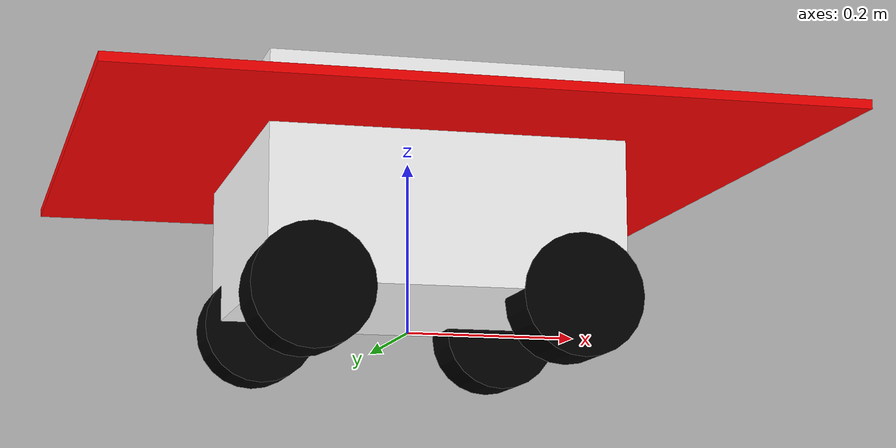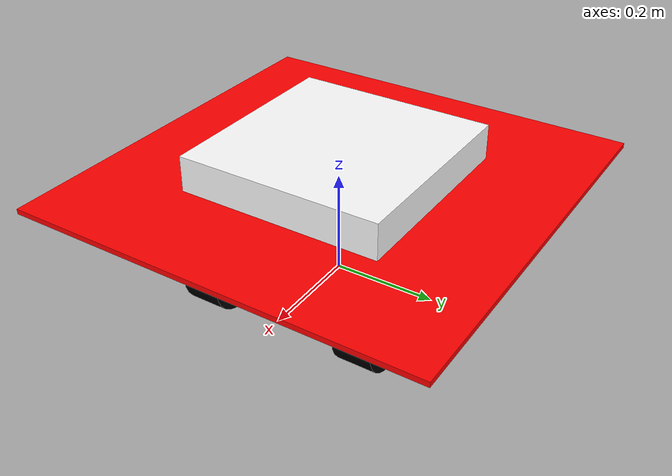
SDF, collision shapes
<sdf version='1.6'>
  <model name='r1_rover'>
  <link name='base_link'>
      <pose>0 0 0 0 -0 0</pose>
      <inertial>
        <pose>0 0 0 0 -0 0</pose>
        <mass>20.0</mass>
        <inertia>
          <ixx>0.37083</ixx>
          <ixy>0.0</ixy>
          <ixz>0.0</ixz>
          <iyy>0.37083</iyy>
          <iyz>0.0</iyz>
          <izz>0.53333</izz>
        </inertia>
      </inertial>
      <collision name='odom_fixed_joint_lump__base_link_collision'>
        <pose>0 0 0.15 0 -0 0</pose>
        <geometry>
          <box>
            <size>0.4 0.4 0.25</size>
          </box>
        </geometry>
        <surface>
          <contact>
            <ode/>
          </contact>
          <friction>
            <ode/>
          </friction>
        </surface>
      </collision>
      <visual name='odom_fixed_joint_lump__base_link_visual'>
        <pose>0 0 0 0 -0 0</pose>
        <geometry>
          <mesh>
            <scale>1 1 1</scale>
            <uri>model://r1_rover/meshes/chassis_link.STL</uri>
          </mesh>
        </geometry>
        <material>
          <diffuse>1.0 1.0 1.0</diffuse>
          <specular>1.0 1.0 1.0</specular>
        </material>
      </visual>
      <visual name='odom_fixed_joint_lump__top_link_visual_1'>
        <pose>0 0 0.114486 0 -0 0</pose>
        <geometry>
          <mesh>
            <scale>1 1 1</scale>
            <uri>model://r1_rover/meshes/top_link.STL</uri>
          </mesh>
        </geometry>
        <material>
          <diffuse>1.0 1.0 1.0</diffuse>
          <specular>1.0 1.0 1.0</specular>
        </material>
      </visual>
      <visual name='odom_fixed_joint_lump__battery_link_visual_2'>
        <pose>-0.09302 -0.000128 0.114486 0 -0 0</pose>
        <geometry>
          <mesh>
            <scale>1 1 1</scale>
            <uri>model://r1_rover/meshes/battery_link.STL</uri>
          </mesh>
        </geometry>
        <material>
          <diffuse>0.0 0.0 0.0</diffuse>
          <specular>0.5 0.5 0.5</specular>
        </material>
      </visual>
      <visual name='odom_fixed_joint_lump__housing_link_visual_3'>
        <pose>0.03473 0 0.114486 0 -0 0</pose>
        <geometry>
          <mesh>
            <scale>1 1 1</scale>
            <uri>model://r1_rover/meshes/housing_link.STL</uri>
          </mesh>
        </geometry>
        <material>
          <diffuse>0.0 0.0 0.0</diffuse>
          <specular>0.5 0.5 0.5</specular>
        </material>
      </visual>
      <visual name='odom_fixed_joint_lump__l_antenna_link_visual_4'>
        <pose>-0.1565 0.0762 0.114486 0 -0 0</pose>
        <geometry>
          <mesh>
            <scale>1 1 1</scale>
            <uri>model://r1_rover/meshes/antenna_link.STL</uri>
          </mesh>
        </geometry>
        <material>
          <diffuse>0.0 0.0 0.0</diffuse>
          <specular>0.5 0.5 0.5</specular>
        </material>
      </visual>
      <visual name='odom_fixed_joint_lump__r_antenna_link_visual_5'>
        <pose>-0.1565 -0.0762 0.114486 0 -0 0</pose>
        <geometry>
          <mesh>
            <scale>1 1 1</scale>
            <uri>model://r1_rover/meshes/antenna_link.STL</uri>
          </mesh>
        </geometry>
        <material>
          <diffuse>0.0 0.0 0.0</diffuse>
          <specular>0.5 0.5 0.5</specular>
        </material>
      </visual>
      <velocity_decay/>
      <velocity_decay/>
      <velocity_decay/>
      <velocity_decay/>
      <velocity_decay/>
      <gravity>1</gravity>
      <velocity_decay/>
      <sensor name="imu_sensor" type="imu">
          <always_on>1</always_on>
          <update_rate>250</update_rate>
          <imu>
            <angular_velocity>
              <x> <noise type="gaussian"> <mean>0</mean> <stddev>0.0003394</stddev> <dynamic_bias_stddev>3.8785e-05</dynamic_bias_stddev> <dynamic_bias_correlation_time>1000</dynamic_bias_correlation_time> </noise> </x>
              <y> <noise type="gaussian"> <mean>0</mean> <stddev>0.0003394</stddev> <dynamic_bias_stddev>3.8785e-05</dynamic_bias_stddev> <dynamic_bias_correlation_time>1000</dynamic_bias_correlation_time> </noise> </y>
              <z> <noise type="gaussian"> <mean>0</mean> <stddev>0.0003394</stddev> <dynamic_bias_stddev>3.8785e-05</dynamic_bias_stddev> <dynamic_bias_correlation_time>1000</dynamic_bias_correlation_time> </noise> </z>
            </angular_velocity>
            <linear_acceleration>
              <x> <noise type="gaussian"> <mean>0</mean> <stddev>0.004</stddev> <dynamic_bias_stddev>0.006</dynamic_bias_stddev> <dynamic_bias_correlation_time>300</dynamic_bias_correlation_time> </noise> </x>
              <y> <noise type="gaussian"> <mean>0</mean> <stddev>0.004</stddev> <dynamic_bias_stddev>0.006</dynamic_bias_stddev> <dynamic_bias_correlation_time>300</dynamic_bias_correlation_time> </noise> </y>
              <z> <noise type="gaussian"> <mean>0</mean> <stddev>0.004</stddev> <dynamic_bias_stddev>0.006</dynamic_bias_stddev> <dynamic_bias_correlation_time>300</dynamic_bias_correlation_time> </noise> </z>
            </linear_acceleration>
          </imu>
        </sensor>
        <sensor name="air_pressure_sensor" type="air_pressure">
          <always_on>1</always_on>
          <update_rate>50</update_rate>
          <air_pressure>
            <pressure>
              <noise type="gaussian"> <mean>0</mean> <stddev>0.01</stddev> </noise>
            </pressure>
          </air_pressure>
        </sensor>
        <sensor name="magnetometer_sensor" type="magnetometer">
          <always_on>1</always_on>
          <update_rate>100</update_rate>
          <magnetometer>
            <x> <noise type="gaussian"> <stddev>0.0001</stddev> </noise> </x>
            <y> <noise type="gaussian"> <stddev>0.0001</stddev> </noise> </y>
            <z> <noise type="gaussian"> <stddev>0.0001</stddev> </noise> </z>
          </magnetometer>
        </sensor>
        <sensor name="navsat_sensor" type="navsat">
          <always_on>1</always_on>
          <update_rate>30</update_rate>
        </sensor>
    </link>

    <link name='lf_wheel_link'>
      <pose>0.15 0.16317 0.0215 0 -0 0</pose>
      <inertial>
        <pose>0 0 0 1.57079632679 0 0</pose>
        <mass>0.414</mass>
        <inertia>
          <ixx>0.00068682</ixx> <ixy>0</ixy> <ixz>0</ixz>
          <iyy>0.00068682</iyy> <iyz>0</iyz>
          <izz>0.00097299</izz>
        </inertia>
      </inertial>
      <collision name='lf_wheel_link_collision'>
        <pose>0 0 0 1.57079632679 0 0</pose>
        <geometry>
          <cylinder> <radius>0.0686</radius> <length>0.0762</length> </cylinder>
        </geometry>
        <max_contacts>1</max_contacts>
        <surface>
          <friction> <torsional> <coefficient>0.25</coefficient> <use_patch_radius>1</use_patch_radius> <surface_radius>0.0686</surface_radius> </torsional> <ode> <mu>1.0</mu> <mu2>1.0</mu2> <fdir1>1 0 0</fdir1> <slip1>0.0</slip1> <slip2>0.0</slip2> </ode> </friction>
          <bounce> <restitution_coefficient>0</restitution_coefficient> <threshold>1e6</threshold> </bounce>
          <contact> <ode> <min_depth>0.001</min_depth> <max_vel>0.0</max_vel> <kp>1.0e6</kp> <kd>100.0</kd> </ode> </contact>
        </surface>
      </collision>
      <visual name='lf_wheel_link_visual'>
        <pose>0 0 0 0 -0 0</pose>
        <geometry>
          <mesh> <scale>1 1 1</scale> <uri>model://r1_rover/meshes/wheel_link.STL</uri> </mesh>
        </geometry>
        <material> <diffuse>0.0 0.0 0.0</diffuse> <specular>0.5 0.5 0.5</specular> </material>
      </visual>
      <gravity>1</gravity>
      <velocity_decay/>
    </link>

    <link name='lb_wheel_link'>
      <pose>-0.15 0.16317 0.0215 0 -0 0</pose>
      <inertial>
        <pose>0 0 0 1.57079632679 0 0</pose>
        <mass>0.414</mass>
        <inertia>
          <ixx>0.00068682</ixx> <ixy>0</ixy> <ixz>0</ixz>
          <iyy>0.00068682</iyy> <iyz>0</iyz>
          <izz>0.00097299</izz>
        </inertia>
      </inertial>
      <collision name='lb_wheel_link_collision'>
        <pose>0 0 0 1.57079632679 0 0</pose>
        <geometry>
          <cylinder> <radius>0.0686</radius> <length>0.0762</length> </cylinder>
        </geometry>
        <max_contacts>1</max_contacts>
        <surface>
          <friction> <torsional> <coefficient>0.25</coefficient> <use_patch_radius>1</use_patch_radius> <surface_radius>0.0686</surface_radius> </torsional> <ode> <mu>1.0</mu> <mu2>1.0</mu2> <fdir1>1 0 0</fdir1> <slip1>0.0</slip1> <slip2>0.0</slip2> </ode> </friction>
          <bounce> <restitution_coefficient>0</restitution_coefficient> <threshold>1e6</threshold> </bounce>
          <contact> <ode> <min_depth>0.001</min_depth> <max_vel>0.0</max_vel> <kp>1.0e6</kp> <kd>100.0</kd> </ode> </contact>
        </surface>
      </collision>
      <visual name='lb_wheel_link_visual'>
        <pose>0 0 0 0 -0 0</pose>
        <geometry>
          <mesh> <scale>1 1 1</scale> <uri>model://r1_rover/meshes/wheel_link.STL</uri> </mesh>
        </geometry>
        <material> <diffuse>0.0 0.0 0.0</diffuse> <specular>0.5 0.5 0.5</specular> </material>
      </visual>
      <gravity>1</gravity>
      <velocity_decay/>
    </link>

    <link name='rf_wheel_link'>
      <pose>0.15 -0.16317 0.0215 0 -0 0</pose>
      <inertial>
        <pose>0 0 0 1.57079632679 0 0</pose>
        <mass>0.414</mass>
        <inertia>
          <ixx>0.00068682</ixx> <ixy>0</ixy> <ixz>0</ixz>
          <iyy>0.00068682</iyy> <iyz>0</iyz>
          <izz>0.00097299</izz>
        </inertia>
      </inertial>
      <collision name='rf_wheel_link_collision'>
        <pose>0 0 0 1.57079632679 0 0</pose>
        <geometry>
          <cylinder> <radius>0.0686</radius> <length>0.0762</length> </cylinder>
        </geometry>
        <max_contacts>1</max_contacts>
        <surface>
          <friction> <torsional> <coefficient>0.25</coefficient> <use_patch_radius>1</use_patch_radius> <surface_radius>0.0686</surface_radius> </torsional> <ode> <mu>1.0</mu> <mu2>1.0</mu2> <fdir1>1 0 0</fdir1> <slip1>0.0</slip1> <slip2>0.0</slip2> </ode> </friction>
          <bounce> <restitution_coefficient>0</restitution_coefficient> <threshold>1e6</threshold> </bounce>
          <contact> <ode> <min_depth>0.001</min_depth> <max_vel>0.0</max_vel> <kp>1.0e6</kp> <kd>100.0</kd> </ode> </contact>
        </surface>
      </collision>
      <visual name='rf_wheel_link_visual'>
        <pose>0 0 0 0 -0 0</pose>
        <geometry>
          <mesh> <scale>1 1 1</scale> <uri>model://r1_rover/meshes/wheel_link.STL</uri> </mesh>
        </geometry>
        <material> <diffuse>0.0 0.0 0.0</diffuse> <specular>0.5 0.5 0.5</specular> </material>
      </visual>
      <gravity>1</gravity>
      <velocity_decay/>
    </link>

    <link name='rb_wheel_link'>
      <pose>-0.15 -0.16317 0.0215 0 -0 0</pose>
      <inertial>
        <pose>0 0 0 1.57079632679 0 0</pose>
        <mass>0.414</mass>
        <inertia>
          <ixx>0.00068682</ixx> <ixy>0</ixy> <ixz>0</ixz>
          <iyy>0.00068682</iyy> <iyz>0</iyz>
          <izz>0.00097299</izz>
        </inertia>
      </inertial>
      <collision name='rb_wheel_link_collision'>
        <pose>0 0 0 1.57079632679 0 0</pose>
        <geometry>
          <cylinder> <radius>0.0686</radius> <length>0.0762</length> </cylinder>
        </geometry>
        <max_contacts>1</max_contacts>
        <surface>
          <friction> <torsional> <coefficient>0.25</coefficient> <use_patch_radius>1</use_patch_radius> <surface_radius>0.0686</surface_radius> </torsional> <ode> <mu>1.0</mu> <mu2>1.0</mu2> <fdir1>1 0 0</fdir1> <slip1>0.0</slip1> <slip2>0.0</slip2> </ode> </friction>
          <bounce> <restitution_coefficient>0</restitution_coefficient> <threshold>1e6</threshold> </bounce>
          <contact> <ode> <min_depth>0.001</min_depth> <kp>1e8</kp> </ode> </contact>
        </surface>
      </collision>
      <visual name='rb_wheel_link_visual'>
        <pose>0 0 0 0 -0 0</pose>
        <geometry>
          <mesh> <scale>1 1 1</scale> <uri>model://r1_rover/meshes/wheel_link.STL</uri> </mesh>
        </geometry>
        <material> <diffuse>0.0 0.0 0.0</diffuse> <specular>0.5 0.5 0.5</specular> </material>
      </visual>
      <gravity>1</gravity>
      <velocity_decay/>
    </link>

    <link name="plataforma_aterrizaje">
      <pose>0 0 0.2 0 0 0</pose>
      <inertial> <mass>0.5</mass>
        <inertia>
          <ixx>0.0535</ixx> <ixy>0</ixy> <ixz>0</ixz>
          <iyy>0.0535</iyy> <iyz>0</iyz>
          <izz>0.1067</izz>
        </inertia>
      </inertial>
      <collision name="collision_plataforma">
         <geometry>
           <box><size>0.8 0.8 0.01</size></box>
         </geometry>
         <surface> <contact><ode/></contact> <friction><ode/></friction> <bounce/> </surface>
      </collision>
      <visual name="visual_base_roja">
         <pose>0 0 0 0 0 0</pose> <geometry>
            <box><size>0.8 0.8 0.01</size></box> </geometry>
         <material>
            <ambient>1 0 0 1</ambient>
            <diffuse>1 0 0 1</diffuse>
            <specular>0.1 0.1 0.1 1</specular>
         </material>
      </visual>
      <visual name="visual_superficie_gris">
         <pose>0 0 0.005 0 0 0</pose>
         <geometry>
            <box><size>0.7 0.7 0.01</size></box> </geometry>
         <material>
            <ambient>0.5 0.5 0.5 1</ambient>
            <diffuse>0.5 0.5 0.5 1</diffuse>
            <specular>0.1 0.1 0.1 1</specular>
         </material>
      </visual>
    </link>
    <joint name='motor_0' type='revolute'>
      <child>lf_wheel_link</child>
      <parent>base_link</parent>
      <axis>
        <xyz>0 1 0</xyz>
        <limit> <lower>-1e+16</lower> <upper>1e+16</upper> </limit>
        <dynamics> <spring_reference>0</spring_reference> <spring_stiffness>0</spring_stiffness> </dynamics>
        <use_parent_model_frame>1</use_parent_model_frame>
      </axis>
    </joint>
    <joint name='motor_1' type='revolute'>
      <child>lb_wheel_link</child>
      <parent>base_link</parent>
      <axis>
        <xyz>0 1 0</xyz>
        <limit> <lower>-1e+16</lower> <upper>1e+16</upper> </limit>
        <dynamics> <spring_reference>0</spring_reference> <spring_stiffness>0</spring_stiffness> </dynamics>
        <use_parent_model_frame>1</use_parent_model_frame>
      </axis>
    </joint>
    <joint name='motor_2' type='revolute'>
      <child>rf_wheel_link</child>
      <parent>base_link</parent>
      <axis>
        <xyz>0 -1 0</xyz> <limit> <lower>-1e+16</lower> <upper>1e+16</upper> </limit>
        <dynamics> <spring_reference>0</spring_reference> <spring_stiffness>0</spring_stiffness> </dynamics>
        <use_parent_model_frame>1</use_parent_model_frame>
      </axis>
    </joint>
    <joint name='motor_3' type='revolute'>
      <child>rb_wheel_link</child>
      <parent>base_link</parent>
      <axis>
        <xyz>0 -1 0</xyz> <limit> <lower>-1e+16</lower> <upper>1e+16</upper> </limit>
        <dynamics> <spring_reference>0</spring_reference> <spring_stiffness>0</spring_stiffness> </dynamics>
        <use_parent_model_frame>1</use_parent_model_frame>
      </axis>
    </joint>

    <joint name="joint_plataforma_chasis" type="fixed">
      <parent>base_link</parent> <child>plataforma_aterrizaje</child> <pose>0 0 0 0 0 0</pose> </joint>
    <static>0</static> <plugin filename="gz-sim-joint-controller-system" name="gz::sim::systems::JointController">
      <joint_name>motor_0</joint_name> <sub_topic>command/motor_speed</sub_topic> <use_actuator_msg>true</use_actuator_msg> <actuator_number>1</actuator_number> <p_gain>10.0</p_gain>
    </plugin>
    <plugin filename="gz-sim-joint-controller-system" name="gz::sim::systems::JointController">
      <joint_name>motor_1</joint_name> <sub_topic>command/motor_speed</sub_topic> <use_actuator_msg>true</use_actuator_msg> <actuator_number>1</actuator_number> <p_gain>10.0</p_gain>
    </plugin>
    <plugin filename="gz-sim-joint-controller-system" name="gz::sim::systems::JointController">
      <joint_name>motor_2</joint_name> <sub_topic>command/motor_speed</sub_topic> <use_actuator_msg>true</use_actuator_msg> <actuator_number>0</actuator_number> <p_gain>10.0</p_gain>
    </plugin>
    <plugin filename="gz-sim-joint-controller-system" name="gz::sim::systems::JointController">
      <joint_name>motor_3</joint_name> <sub_topic>command/motor_speed</sub_topic> <use_actuator_msg>true</use_actuator_msg> <actuator_number>0</actuator_number> <p_gain>10.0</p_gain>
    </plugin>
    <plugin filename="gz-sim-joint-state-publisher-system" name="gz::sim::systems::JointStatePublisher">
      <joint_name>motor_0</joint_name> <joint_name>motor_1</joint_name> <joint_name>motor_2</joint_name> <joint_name>motor_3</joint_name>
    </plugin>

  </model>
</sdf>
